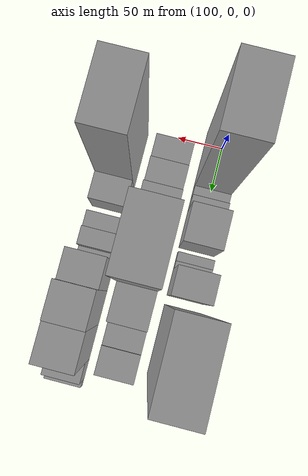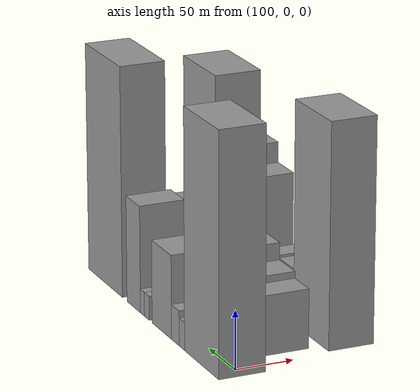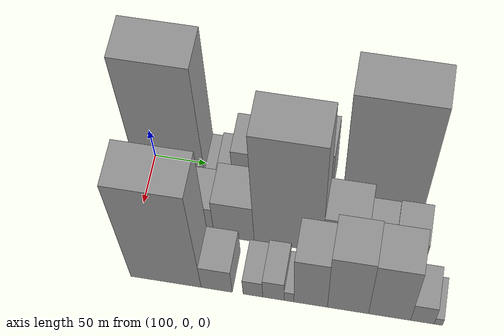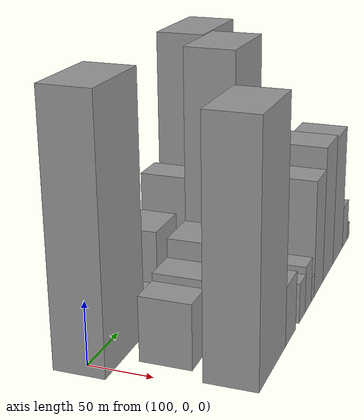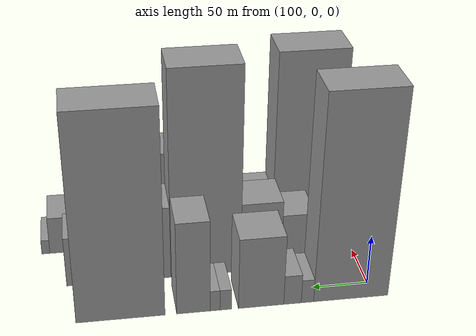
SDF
<sdf version="1.6">
 <world name="default">
  <model name="building_18">
   <static>1</static>
   <pose>100.0000 20.3426 0 0.000000 0.000000 0.000000</pose>
   <link name="link">
    <pose>0 0 102.00 0 0 0</pose>
    <collision name="collision"><geometry><box><size>40.0000 66.8698 204.0000</size></box></geometry></collision>
    <visual name="visual">
     <cast_shadows>0</cast_shadows>
     <geometry><box><size>40.0000 66.8698 204.0000</size></box></geometry>
     <material>
      <script>
       <uri>model://grey_wall/materials/scripts</uri>
       <uri>model://grey_wall/materials/textures</uri>
       <name>vrc/grey_wall</name>
      </script>
     </material>
    </visual>
   </link>
  </model>
  <model name="building_19">
   <static>1</static>
   <pose>100.0000 59.2627 0 0.000000 0.000000 0.000000</pose>
   <link name="link">
    <pose>0 0 12.00 0 0 0</pose>
    <collision name="collision"><geometry><box><size>40.0000 10.9704 24.0000</size></box></geometry></collision>
    <visual name="visual">
     <cast_shadows>0</cast_shadows>
     <geometry><box><size>40.0000 10.9704 24.0000</size></box></geometry>
     <material>
      <script>
       <uri>model://grey_wall/materials/scripts</uri>
       <uri>model://grey_wall/materials/textures</uri>
       <name>vrc/grey_wall</name>
      </script>
     </material>
    </visual>
   </link>
  </model>
  <model name="building_20">
   <static>1</static>
   <pose>100.0000 72.4985 0 0.000000 0.000000 0.000000</pose>
   <link name="link">
    <pose>0 0 15.00 0 0 0</pose>
    <collision name="collision"><geometry><box><size>40.0000 15.5013 30.0000</size></box></geometry></collision>
    <visual name="visual">
     <cast_shadows>0</cast_shadows>
     <geometry><box><size>40.0000 15.5013 30.0000</size></box></geometry>
     <material>
      <script>
       <uri>model://grey_wall/materials/scripts</uri>
       <uri>model://grey_wall/materials/textures</uri>
       <name>vrc/grey_wall</name>
      </script>
     </material>
    </visual>
   </link>
  </model>
  <model name="building_21">
   <static>1</static>
   <pose>100.0000 100.2305 0 0.000000 0.000000 0.000000</pose>
   <link name="link">
    <pose>0 0 36.00 0 0 0</pose>
    <collision name="collision"><geometry><box><size>40.0000 39.9627 72.0000</size></box></geometry></collision>
    <visual name="visual">
     <cast_shadows>0</cast_shadows>
     <geometry><box><size>40.0000 39.9627 72.0000</size></box></geometry>
     <material>
      <script>
       <uri>model://grey_wall/materials/scripts</uri>
       <uri>model://grey_wall/materials/textures</uri>
       <name>vrc/grey_wall</name>
      </script>
     </material>
    </visual>
   </link>
  </model>
  <model name="building_22">
   <static>1</static>
   <pose>100.0000 131.3151 0 0.000000 0.000000 0.000000</pose>
   <link name="link">
    <pose>0 0 10.50 0 0 0</pose>
    <collision name="collision"><geometry><box><size>40.0000 10.2065 21.0000</size></box></geometry></collision>
    <visual name="visual">
     <cast_shadows>0</cast_shadows>
     <geometry><box><size>40.0000 10.2065 21.0000</size></box></geometry>
     <material>
      <script>
       <uri>model://grey_wall/materials/scripts</uri>
       <uri>model://grey_wall/materials/textures</uri>
       <name>vrc/grey_wall</name>
      </script>
     </material>
    </visual>
   </link>
  </model>
  <model name="building_23">
   <static>1</static>
   <pose>100.0000 140.7610 0 0.000000 0.000000 0.000000</pose>
   <link name="link">
    <pose>0 0 10.50 0 0 0</pose>
    <collision name="collision"><geometry><box><size>40.0000 8.6855 21.0000</size></box></geometry></collision>
    <visual name="visual">
     <cast_shadows>0</cast_shadows>
     <geometry><box><size>40.0000 8.6855 21.0000</size></box></geometry>
     <material>
      <script>
       <uri>model://grey_wall/materials/scripts</uri>
       <uri>model://grey_wall/materials/textures</uri>
       <name>vrc/grey_wall</name>
      </script>
     </material>
    </visual>
   </link>
  </model>
  <model name="building_24">
   <static>1</static>
   <pose>100.0000 159.5130 0 0.000000 0.000000 0.000000</pose>
   <link name="link">
    <pose>0 0 46.50 0 0 0</pose>
    <collision name="collision"><geometry><box><size>40.0000 28.8184 93.0000</size></box></geometry></collision>
    <visual name="visual">
     <cast_shadows>0</cast_shadows>
     <geometry><box><size>40.0000 28.8184 93.0000</size></box></geometry>
     <material>
      <script>
       <uri>model://grey_wall/materials/scripts</uri>
       <uri>model://grey_wall/materials/textures</uri>
       <name>vrc/grey_wall</name>
      </script>
     </material>
    </visual>
   </link>
  </model>
  <model name="building_25">
   <static>1</static>
   <pose>100.0000 221.8698 0 0.000000 0.000000 0.000000</pose>
   <link name="link">
    <pose>0 0 100.50 0 0 0</pose>
    <collision name="collision"><geometry><box><size>40.0000 75.8951 201.0000</size></box></geometry></collision>
    <visual name="visual">
     <cast_shadows>0</cast_shadows>
     <geometry><box><size>40.0000 75.8951 201.0000</size></box></geometry>
     <material>
      <script>
       <uri>model://grey_wall/materials/scripts</uri>
       <uri>model://grey_wall/materials/textures</uri>
       <name>vrc/grey_wall</name>
      </script>
     </material>
    </visual>
   </link>
  </model>
  <model name="building_49">
   <static>1</static>
   <pose>152.0000 30.0480 0 0.000000 0.000000 0.000000</pose>
   <link name="link">
    <pose>0 0 25.50 0 0 0</pose>
    <collision name="collision"><geometry><box><size>40.0000 26.0298 51.0000</size></box></geometry></collision>
    <visual name="visual">
     <cast_shadows>0</cast_shadows>
     <geometry><box><size>40.0000 26.0298 51.0000</size></box></geometry>
     <material>
      <script>
       <uri>model://grey_wall/materials/scripts</uri>
       <uri>model://grey_wall/materials/textures</uri>
       <name>vrc/grey_wall</name>
      </script>
     </material>
    </visual>
   </link>
  </model>
  <model name="building_50">
   <static>1</static>
   <pose>152.0000 57.5717 0 0.000000 0.000000 0.000000</pose>
   <link name="link">
    <pose>0 0 28.50 0 0 0</pose>
    <collision name="collision"><geometry><box><size>40.0000 29.0176 57.0000</size></box></geometry></collision>
    <visual name="visual">
     <cast_shadows>0</cast_shadows>
     <geometry><box><size>40.0000 29.0176 57.0000</size></box></geometry>
     <material>
      <script>
       <uri>model://grey_wall/materials/scripts</uri>
       <uri>model://grey_wall/materials/textures</uri>
       <name>vrc/grey_wall</name>
      </script>
     </material>
    </visual>
   </link>
  </model>
  <model name="building_51">
   <static>1</static>
   <pose>152.0000 90.7704 0 0.000000 0.000000 0.000000</pose>
   <link name="link">
    <pose>0 0 36.00 0 0 0</pose>
    <collision name="collision"><geometry><box><size>40.0000 37.3799 72.0000</size></box></geometry></collision>
    <visual name="visual">
     <cast_shadows>0</cast_shadows>
     <geometry><box><size>40.0000 37.3799 72.0000</size></box></geometry>
     <material>
      <script>
       <uri>model://grey_wall/materials/scripts</uri>
       <uri>model://grey_wall/materials/textures</uri>
       <name>vrc/grey_wall</name>
      </script>
     </material>
    </visual>
   </link>
  </model>
  <model name="building_52">
   <static>1</static>
   <pose>152.0000 141.3842 0 0.000000 0.000000 0.000000</pose>
   <link name="link">
    <pose>0 0 103.50 0 0 0</pose>
    <collision name="collision"><geometry><box><size>40.0000 63.8476 207.0000</size></box></geometry></collision>
    <visual name="visual">
     <cast_shadows>0</cast_shadows>
     <geometry><box><size>40.0000 63.8476 207.0000</size></box></geometry>
     <material>
      <script>
       <uri>model://grey_wall/materials/scripts</uri>
       <uri>model://grey_wall/materials/textures</uri>
       <name>vrc/grey_wall</name>
      </script>
     </material>
    </visual>
   </link>
  </model>
  <model name="building_53">
   <static>1</static>
   <pose>152.0000 192.9601 0 0.000000 0.000000 0.000000</pose>
   <link name="link">
    <pose>0 0 37.50 0 0 0</pose>
    <collision name="collision"><geometry><box><size>40.0000 39.3041 75.0000</size></box></geometry></collision>
    <visual name="visual">
     <cast_shadows>0</cast_shadows>
     <geometry><box><size>40.0000 39.3041 75.0000</size></box></geometry>
     <material>
      <script>
       <uri>model://grey_wall/materials/scripts</uri>
       <uri>model://grey_wall/materials/textures</uri>
       <name>vrc/grey_wall</name>
      </script>
     </material>
    </visual>
   </link>
  </model>
  <model name="building_54">
   <static>1</static>
   <pose>152.0000 225.0005 0 0.000000 0.000000 0.000000</pose>
   <link name="link">
    <pose>0 0 24.00 0 0 0</pose>
    <collision name="collision"><geometry><box><size>40.0000 24.7766 48.0000</size></box></geometry></collision>
    <visual name="visual">
     <cast_shadows>0</cast_shadows>
     <geometry><box><size>40.0000 24.7766 48.0000</size></box></geometry>
     <material>
      <script>
       <uri>model://grey_wall/materials/scripts</uri>
       <uri>model://grey_wall/materials/textures</uri>
       <name>vrc/grey_wall</name>
      </script>
     </material>
    </visual>
   </link>
  </model>
  <model name="building_55">
   <static>1</static>
   <pose>152.0000 252.0934 0 0.000000 0.000000 0.000000</pose>
   <link name="link">
    <pose>0 0 25.50 0 0 0</pose>
    <collision name="collision"><geometry><box><size>40.0000 29.4092 51.0000</size></box></geometry></collision>
    <visual name="visual">
     <cast_shadows>0</cast_shadows>
     <geometry><box><size>40.0000 29.4092 51.0000</size></box></geometry>
     <material>
      <script>
       <uri>model://grey_wall/materials/scripts</uri>
       <uri>model://grey_wall/materials/textures</uri>
       <name>vrc/grey_wall</name>
      </script>
     </material>
    </visual>
   </link>
  </model>
  <model name="building_81">
   <static>1</static>
   <pose>204.0000 37.5431 0 0.000000 0.000000 0.000000</pose>
   <link name="link">
    <pose>0 0 96.00 0 0 0</pose>
    <collision name="collision"><geometry><box><size>40.0000 65.1049 192.0000</size></box></geometry></collision>
    <visual name="visual">
     <cast_shadows>0</cast_shadows>
     <geometry><box><size>40.0000 65.1049 192.0000</size></box></geometry>
     <material>
      <script>
       <uri>model://grey_wall/materials/scripts</uri>
       <uri>model://grey_wall/materials/textures</uri>
       <name>vrc/grey_wall</name>
      </script>
     </material>
    </visual>
   </link>
  </model>
  <model name="building_82">
   <static>1</static>
   <pose>204.0000 84.4044 0 0.000000 0.000000 0.000000</pose>
   <link name="link">
    <pose>0 0 24.00 0 0 0</pose>
    <collision name="collision"><geometry><box><size>40.0000 28.6175 48.0000</size></box></geometry></collision>
    <visual name="visual">
     <cast_shadows>0</cast_shadows>
     <geometry><box><size>40.0000 28.6175 48.0000</size></box></geometry>
     <material>
      <script>
       <uri>model://grey_wall/materials/scripts</uri>
       <uri>model://grey_wall/materials/textures</uri>
       <name>vrc/grey_wall</name>
      </script>
     </material>
    </visual>
   </link>
  </model>
  <model name="building_83">
   <static>1</static>
   <pose>204.0000 117.6810 0 0.000000 0.000000 0.000000</pose>
   <link name="link">
    <pose>0 0 16.50 0 0 0</pose>
    <collision name="collision"><geometry><box><size>40.0000 17.9357 33.0000</size></box></geometry></collision>
    <visual name="visual">
     <cast_shadows>0</cast_shadows>
     <geometry><box><size>40.0000 17.9357 33.0000</size></box></geometry>
     <material>
      <script>
       <uri>model://grey_wall/materials/scripts</uri>
       <uri>model://grey_wall/materials/textures</uri>
       <name>vrc/grey_wall</name>
      </script>
     </material>
    </visual>
   </link>
  </model>
  <model name="building_84">
   <static>1</static>
   <pose>204.0000 136.4431 0 0.000000 0.000000 0.000000</pose>
   <link name="link">
    <pose>0 0 19.50 0 0 0</pose>
    <collision name="collision"><geometry><box><size>40.0000 19.5885 39.0000</size></box></geometry></collision>
    <visual name="visual">
     <cast_shadows>0</cast_shadows>
     <geometry><box><size>40.0000 19.5885 39.0000</size></box></geometry>
     <material>
      <script>
       <uri>model://grey_wall/materials/scripts</uri>
       <uri>model://grey_wall/materials/textures</uri>
       <name>vrc/grey_wall</name>
      </script>
     </material>
    </visual>
   </link>
  </model>
  <model name="building_85">
   <static>1</static>
   <pose>204.0000 150.6640 0 0.000000 0.000000 0.000000</pose>
   <link name="link">
    <pose>0 0 10.50 0 0 0</pose>
    <collision name="collision"><geometry><box><size>40.0000 8.8533 21.0000</size></box></geometry></collision>
    <visual name="visual">
     <cast_shadows>0</cast_shadows>
     <geometry><box><size>40.0000 8.8533 21.0000</size></box></geometry>
     <material>
      <script>
       <uri>model://grey_wall/materials/scripts</uri>
       <uri>model://grey_wall/materials/textures</uri>
       <name>vrc/grey_wall</name>
      </script>
     </material>
    </visual>
   </link>
  </model>
  <model name="building_86">
   <static>1</static>
   <pose>204.0000 170.3398 0 0.000000 0.000000 0.000000</pose>
   <link name="link">
    <pose>0 0 49.50 0 0 0</pose>
    <collision name="collision"><geometry><box><size>40.0000 30.4982 99.0000</size></box></geometry></collision>
    <visual name="visual">
     <cast_shadows>0</cast_shadows>
     <geometry><box><size>40.0000 30.4982 99.0000</size></box></geometry>
     <material>
      <script>
       <uri>model://grey_wall/materials/scripts</uri>
       <uri>model://grey_wall/materials/textures</uri>
       <name>vrc/grey_wall</name>
      </script>
     </material>
    </visual>
   </link>
  </model>
  <model name="building_87">
   <static>1</static>
   <pose>204.0000 204.1676 0 0.000000 0.000000 0.000000</pose>
   <link name="link">
    <pose>0 0 58.50 0 0 0</pose>
    <collision name="collision"><geometry><box><size>40.0000 37.1576 117.0000</size></box></geometry></collision>
    <visual name="visual">
     <cast_shadows>0</cast_shadows>
     <geometry><box><size>40.0000 37.1576 117.0000</size></box></geometry>
     <material>
      <script>
       <uri>model://grey_wall/materials/scripts</uri>
       <uri>model://grey_wall/materials/textures</uri>
       <name>vrc/grey_wall</name>
      </script>
     </material>
    </visual>
   </link>
  </model>
  <model name="building_88">
   <static>1</static>
   <pose>204.0000 241.7422 0 0.000000 0.000000 0.000000</pose>
   <link name="link">
    <pose>0 0 57.00 0 0 0</pose>
    <collision name="collision"><geometry><box><size>40.0000 37.9915 114.0000</size></box></geometry></collision>
    <visual name="visual">
     <cast_shadows>0</cast_shadows>
     <geometry><box><size>40.0000 37.9915 114.0000</size></box></geometry>
     <material>
      <script>
       <uri>model://grey_wall/materials/scripts</uri>
       <uri>model://grey_wall/materials/textures</uri>
       <name>vrc/grey_wall</name>
      </script>
     </material>
    </visual>
   </link>
  </model>
  <model name="building_89">
   <static>1</static>
   <pose>204.0000 271.2526 0 0.000000 0.000000 0.000000</pose>
   <link name="link">
    <pose>0 0 19.50 0 0 0</pose>
    <collision name="collision"><geometry><box><size>40.0000 21.0292 39.0000</size></box></geometry></collision>
    <visual name="visual">
     <cast_shadows>0</cast_shadows>
     <geometry><box><size>40.0000 21.0292 39.0000</size></box></geometry>
     <material>
      <script>
       <uri>model://grey_wall/materials/scripts</uri>
       <uri>model://grey_wall/materials/textures</uri>
       <name>vrc/grey_wall</name>
      </script>
     </material>
    </visual>
   </link>
  </model>
  <model name="building_90">
   <static>1</static>
   <pose>204.0000 285.5115 0 0.000000 0.000000 0.000000</pose>
   <link name="link">
    <pose>0 0 7.50 0 0 0</pose>
    <collision name="collision"><geometry><box><size>40.0000 7.4887 15.0000</size></box></geometry></collision>
    <visual name="visual">
     <cast_shadows>0</cast_shadows>
     <geometry><box><size>40.0000 7.4887 15.0000</size></box></geometry>
     <material>
      <script>
       <uri>model://grey_wall/materials/scripts</uri>
       <uri>model://grey_wall/materials/textures</uri>
       <name>vrc/grey_wall</name>
      </script>
     </material>
    </visual>
   </link>
  </model>
 </world>
</sdf>
